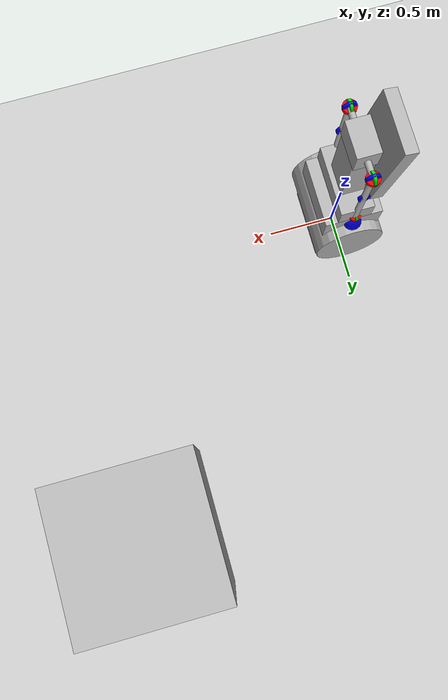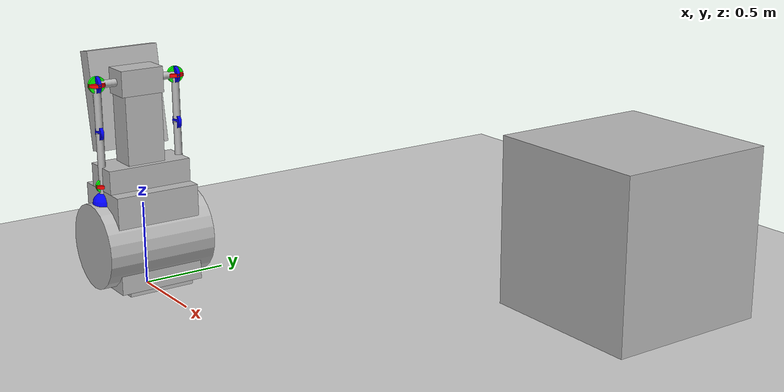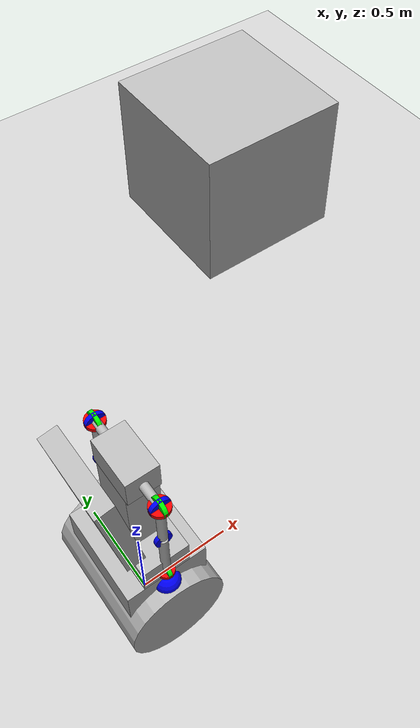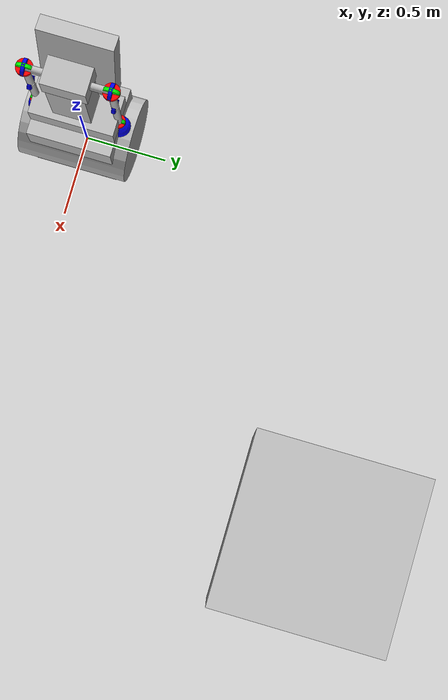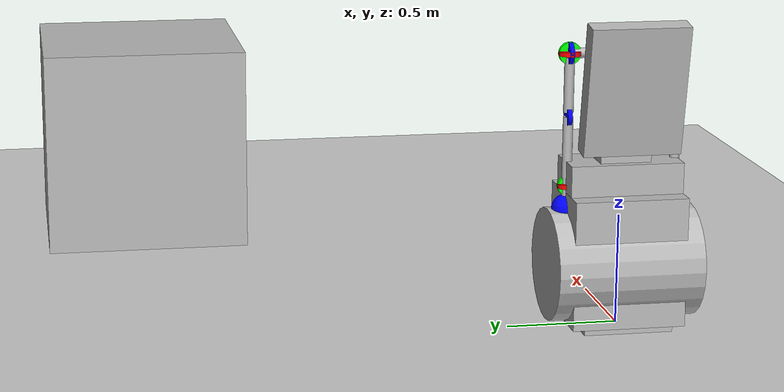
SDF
<?xml version="1.0"?>
<sdf version="1.4">
  <world name="default">
    <include>
      <uri>model://ground_plane</uri>
    </include>

     <include>
      <uri>model://sun</uri>
    </include>

    <include>
      <uri>model://mds</uri>
    </include>

    <model name="box">
      <link name="link">
        <pose>2 2 0.5 0 0 0</pose>

        <collision name="box_collision">
          <geometry>
            <box>
              <size>1 1 1</size>
            </box>
          </geometry>
        </collision>

        <visual name="visual">
          <geometry>
            <box>
              <size>1 1 1</size>
            </box>
          </geometry>
        </visual>

        <sensor name='my_contact' type='contact'>
          <contact>
            <collision>box_collision</collision>
          </contact>
        </sensor>
      </link>
    </model>

  </world>
</sdf>

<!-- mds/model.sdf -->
<sdf version='1.4'>
  <model name="my_robot">

    <pose>0 0 1.24 0 0 0</pose>
 <static>false</static>
 <static>true</static>

<allow_auto_disable>true</allow_auto_disable>

  <!-- Rectangular base -->
  <link name='base'>
    <pose>0 0 -1.2065 0 0 0</pose>
     <collision name='collision'>
      <geometry>
        <box>
         <size> 0.4 0.4 0.01</size>
        </box>
      </geometry>
     </collision>

     <visual name='visual'>
      <geometry>
        <box>
         <size> 0.4 0.4 0.05</size>
        </box>
      </geometry>
    </visual>

     <inertial> <mass>100.1</mass> </inertial>
 </link>

  <link name='wheels'>
    <pose>0 0 -1.2065 0 0 0</pose>
     <collision name='collision'>
      <pose>0 0 .254 1.57 0 0</pose>
      <geometry>
       <cylinder>
        <radius>0.254</radius>
        <length>0.6604</length>
       </cylinder>
      </geometry>
     </collision>

     <visual name='visual'>
      <pose>0 0 .254 1.57 0 0</pose>
      <geometry>
       <cylinder>
        <radius>0.254</radius>
        <length>0.6604</length>
       </cylinder>
      </geometry>
    </visual>

     <inertial> <mass>100.1</mass> </inertial>
 </link>

  <link name='box1'>
    <pose>0 0 -0.9144 0 0 0</pose>
     <collision name='collision'>
      <pose>0 0 0   0 0 0</pose>
      <geometry>
        <box>
         <size>0.4191 0.508 0.5842</size>
        </box>
      </geometry>
     </collision>
     <visual name='visual'>
      <pose>0 0 0   0 0 0</pose>
      <geometry>
        <box>
         <size>0.4191 0.508 0.5842</size>
        </box>
      </geometry>
    </visual>
     <inertial> <mass>100.1</mass> </inertial>
 </link>

  <link name='box2'>
    <pose>0 0 -0.5524 0 0 0</pose>
     <collision name='collision'>
      <pose>0 0 0   0 0 0</pose>
      <geometry>
        <box>
         <size>0.2413 0.508 0.1398</size>
        </box>
      </geometry>
     </collision>
     <visual name='visual'>
      <pose>0 0 0   0 0 0</pose>
      <geometry>
        <box>
         <size>0.2413 0.508 0.1398</size>
        </box>
      </geometry>
    </visual>
     <inertial> <mass>0.1</mass> </inertial>
 </link>

<link name='backpack'>
    <pose>-0.17145 0 -0.13335 0 -0.163526619 0</pose>
     <collision name='collision'>
      <pose>0 0 0   0 0 0</pose>
      <geometry>
        <box>
         <size>0.09525 0.43815 0.5842</size>
        </box>
      </geometry>
     </collision>
     <visual name='visual'>
      <pose>0 0 0   0 0 0</pose>
      <geometry>
        <box>
         <size>0.09525 0.43815 0.5842</size>
        </box>
      </geometry>
    </visual>
     <inertial> <mass>0.1</mass> </inertial>
 </link>

  <link name='chest'>
    <pose>0 0 -0.2794 0 0 0</pose>
     <collision name='collision'>
      <pose>0 0 0   0 0 0</pose>
      <geometry>
        <box>
         <size>0.1651 0.2286 0.4064</size>
        </box>
      </geometry>
     </collision>
     <visual name='visual'>
      <pose>0 0 0   0 0 0</pose>
      <geometry>
        <box>
         <size>0.1651 0.2286 0.4064</size>
        </box>
      </geometry>
    </visual>
     <inertial> <mass>0.1</mass> </inertial>
 </link>

  <!-- Rectangular base -->
  <link name='torso'>
    <pose>0 0 0 0 0 0</pose>
     <collision name='collision'>
      <geometry>
        <box>
         <size> 0.1651 0.26035 0.1524</size>
        </box>
      </geometry>
     </collision>
     <visual name='visual'>
      <geometry>
       <box>
         <size> 0.1651 0.26035 0.1524</size>
       </box>
      </geometry>
    </visual>
     <inertial> <mass>0.1</mass> </inertial>
 </link>

<joint type="revolute" name="WHEELS">
        <pose>0 0.0 0 0 0  0</pose>
        <child>wheels</child>
        <parent>base</parent>
        <axis>
          <xyz>0 0 0</xyz>
          <limit>
            <lower>0</lower>
            <upper>0</upper>
            <effort>0</effort>
          <velocity>0</velocity>
          </limit>

        </axis>
</joint>

<joint type="revolute" name="WHEELS-box1">
        <pose>0 0.0 0 0 0  0</pose>
        <child>box1</child>
        <parent>wheels</parent>
        <axis>
          <xyz>0 0 0</xyz>
          <limit>
            <lower>0</lower>
            <upper>0</upper>
            <effort>0</effort>
          <velocity>0</velocity>
          </limit>
        </axis>
</joint>

<joint type="revolute" name="WHEELS-box2">
        <pose>0 0.0 0 0 0  0</pose>
        <child>box2</child>
        <parent>box1</parent>
        <axis>
          <xyz>0 0 0</xyz>
          <limit>
            <lower>0</lower>
            <upper>0</upper>
            <effort>0</effort>
          <velocity>0</velocity>
          </limit>
        </axis>
</joint>

<joint type="revolute" name="TSY">
        <pose>0 0.0 -0.216 0 0  0</pose>
        <child>chest</child>
        <parent>box2</parent>
        <axis>
          <xyz>0 0 1</xyz>
        </axis>
</joint>

<joint type="revolute" name="backpackjoint">
        <pose>0 0.0 -0.216    0 0 0</pose>
        <child>backpack</child>
        <parent>chest</parent>
        <axis>
          <xyz>0 0 0</xyz>
           <limit>
            <lower>0</lower>
            <upper>0</upper>
            <effort>0</effort>
            <velocity>0</velocity>
          </limit>
       </axis>
</joint>

<joint type="revolute" name="TSY2">
        <pose>0 0.0 -0.216    0 0 0</pose>
        <child>torso</child>
        <parent>chest</parent>
        <axis>
          <xyz>0 0 0</xyz>
           <limit>
            <lower>0</lower>
            <upper>0</upper>
            <effort>0</effort>
            <velocity>0</velocity>
          </limit>
       </axis>
</joint>

<link name="RSP_body">
 <pose>0.0 -0.245510  0.0 1.57 0.0 0.0</pose>

 <collision name="collision">
   <geometry>
     <sphere>
      <radius>0.04953</radius>
     </sphere>
   </geometry>
 </collision>
 <visual name="visual">
   <geometry>
     <cylinder>
      <radius>0.04953</radius>
      <length>.02</length>
     </cylinder>
   </geometry>
  <material>
    <ambient>0 0 1 1</ambient>
    <diffuse>0 0 1 1</diffuse>
    <specular>0.1 0.1 0.1 1</specular>
    <emissive>0 0 0 0</emissive>
  </material>
 </visual>
     <inertial> <mass>0.1</mass> </inertial>

</link>

<link name="RSP_body_fake">
 <pose>0.0 -0.122755 0.0    1.57 0.0 0.0</pose>

 <collision name="collision">
   <geometry>
     <cylinder>
      <radius>0.051</radius>
      <length>0.245510</length>
     </cylinder>
   </geometry>
 </collision>
 <visual name="visual">
   <geometry>
     <cylinder>
      <radius>0.02222</radius>
      <length>0.245510</length>
     </cylinder>
   </geometry>
 </visual>
<sensor name='dan_my_contact' type='contact'> <contact> <collision>box_collision</collision> </contact> </sensor>

</link>
<joint type="revolute" name="RSP">
        <pose>0 0.0 0 0 0  0</pose>
        <child>RSP_body</child>
        <parent>torso</parent>
        <axis>
          <xyz>0 1 0</xyz>
        </axis>
</joint>
<joint type="revolute" name="RSP_fake">
        <pose>0 0.0 0 0 0  0</pose>
        <child>RSP_body_fake</child>
        <parent>torso</parent>
        <axis>
          <xyz>0 1 0</xyz>
        </axis>
</joint>

<link name="RSR_body">
 <pose>0.0 -0.2455100  0.0 0 1.57 0.0</pose>
 <visual name="visual">
   <geometry>
     <cylinder>
      <radius>0.04953</radius>
      <length>.02</length>
     </cylinder>
   </geometry>
  <material>
    <ambient>0 1 0 1</ambient>
    <diffuse>0 1 0 1</diffuse>
    <specular>0.1 0.1 0.1 1</specular>
    <emissive>0 0 0 0</emissive>
  </material>
 </visual>
     <inertial> <mass>0.1</mass> </inertial>

</link>

<joint type="revolute" name="RSR">
 <pose>0.0 0.0 0.0 0 0.0 0.0</pose>
        <child>RSR_body</child>
        <parent>RSP_body</parent>
        <axis>
          <xyz>1 0 0</xyz>
        </axis>
</joint>

<link name="RSY_body">
 <pose>0.0 -0.2455100  0.0 0 0.0 1.57</pose>
 <visual name="visual">
   <geometry>
     <cylinder>
      <radius>0.04953</radius>
      <length>.02</length>
     </cylinder>
   </geometry>
  <material>
    <ambient>1 0 0 1</ambient>
    <diffuse>1 0 0 1</diffuse>
    <specular>0.1 0.1 0.1 1</specular>
    <emissive>0 0 0 0</emissive>
  </material>
 </visual>
     <inertial> <mass>0.1</mass> </inertial>

</link>

<link name="RSY_body_fake">
 <pose>0.0 -0.2455100  -0.1412875   0 0.0 1.57</pose>

 <collision name="collision">
   <geometry>
     <cylinder>
      <radius>0.051</radius>
      <length>0.245510</length>
     </cylinder>
   </geometry>
 </collision>

 <visual name="visual">
   <geometry>
     <cylinder>
      <radius>0.02222</radius>
      <length>0.245510</length>
     </cylinder>

   </geometry>
 </visual>
     <inertial> <mass>0.1</mass> </inertial>

</link>

<joint type="revolute" name="RSY_fake">
 <pose>0.0 0.0 0.0 0 0.0 0.0</pose>
        <child>RSY_body_fake</child>
        <parent>RSR_body</parent>
        <axis>
          <xyz>0 0 1</xyz>
        </axis>
</joint>

<joint type="revolute" name="RSY">
 <pose>0.0 0.0 0.0 0 0.0 0.0</pose>
        <child>RSY_body</child>
        <parent>RSR_body</parent>
        <axis>
          <xyz>0 0 1</xyz>
        </axis>
</joint>

<link name="REP_body">
 <pose>0.0 -0.2455100  -0.2825750 1.57 0.0 0.0</pose>
 <visual name="visual">
   <geometry>
     <cylinder>
      <radius>0.041275</radius>
      <length>.02</length>
     </cylinder>
   </geometry>
  <material>
    <ambient>0 0 1 1</ambient>
    <diffuse>0 0 1 1</diffuse>
    <specular>0.1 0.1 0.1 1</specular>
    <emissive>0 0 0 0</emissive>
  </material>
 </visual>
     <inertial> <mass>0.1</mass> </inertial>

</link>
<joint type="revolute" name="REP">
 <pose>0.0 0.0 0.0 0 0.0 0.0</pose>
        <child>REP_body</child>
        <parent>RSY_body</parent>
        <axis>
          <xyz>0 1 0</xyz>
        </axis>
</joint>

<link name="REP_body_fake">
 <pose>0.0 -0.2455100  -0.43894375 0.0 0.0 0.0</pose>
 <collision name="collision">
   <geometry>
     <cylinder>
      <radius>0.051</radius>
      <length>0.3127375</length>
     </cylinder>
   </geometry>
 </collision>
 <visual name="visual">
   <geometry>
     <cylinder>
      <radius>0.02222</radius>
      <length>0.3127375</length>
     </cylinder>
   </geometry>
 </visual>
     <inertial> <mass>0.1</mass> </inertial>

</link>
<joint type="revolute" name="REP_fake">
 <pose>0.0 0.0 0.0 0 0.0 0.0</pose>
        <child>REP_body_fake</child>
        <parent>REP_body</parent>
        <axis>
          <xyz>0 0 1</xyz>
        </axis>
</joint>

<link name="RWY_body">
 <pose>0.0 -0.2455100  -0.5953125 0 0.0 1.57</pose>
 <visual name="visual">
   <geometry>
     <cylinder>
      <radius>0.041275</radius>
      <length>.02</length>
     </cylinder>
   </geometry>
  <material>
    <ambient>1 0 0 1</ambient>
    <diffuse>1 0 0 1</diffuse>
    <specular>0.1 0.1 0.1 1</specular>
    <emissive>0 0 0 0</emissive>
  </material>
 </visual>
     <inertial> <mass>0.1</mass> </inertial>

</link>
<joint type="revolute" name="RWY">
 <pose>0.0 0.0 0.0 0 0.0 0.0</pose>
        <child>RWY_body</child>
        <parent>REP_body</parent>
        <axis>
          <xyz>0 0 1</xyz>
        </axis>
</joint>

<link name="RWR_body">
 <pose>0.0 -0.2455100  -0.5953125 0.0 1.57 0.0</pose>
 <visual name="visual">
   <geometry>
     <cylinder>
      <radius>0.041275</radius>
      <length>.02</length>
     </cylinder>
   </geometry>
  <material>
    <ambient>0 1 0 1</ambient>
    <diffuse>0 1 0 1</diffuse>
    <specular>0.1 0.1 0.1 1</specular>
    <emissive>0 0 0 0</emissive>
  </material>
 </visual>
     <inertial> <mass>0.1</mass> </inertial>

</link>
<joint type="revolute" name="RWR">
 <pose>0.0 0.0 0.0 0 0.0 0.0</pose>
        <child>RWR_body</child>
        <parent>RWY_body</parent>
        <axis>
          <xyz>1 0 0</xyz>
        </axis>
</joint>

<link name="RWR_body_fake">
 <pose>0.0 -0.2455100  -0.64765625     0.0 0.0 1.57</pose>

 <collision name="collision">
   <geometry>
     <cylinder>
      <radius>0.051</radius>
      <length>0.1046875</length>
     </cylinder>
   </geometry>
 </collision>

 <visual name="visual">
   <geometry>
     <cylinder>
      <radius>0.02222</radius>
      <length>0.1046875</length>
     </cylinder>
   </geometry>
 </visual>
     <inertial> <mass>0.1</mass> </inertial>

</link>
<joint type="revolute" name="RWR_fake">
 <pose>0.0 0.0 0.0 0 0.0 0.0</pose>
        <child>RWR_body_fake</child>
        <parent>RWR_body</parent>
        <axis>
          <xyz>0 0 1</xyz>
        </axis>
</joint>

<link name="RHAND_body">
 <pose>0.0 -0.2455100  -0.70 0 0.0 0.0</pose>
 <collision name="collision">
   <geometry>
       <sphere>
          <radius> 0.065 </radius>
       </sphere>
   </geometry>
 </collision>
 <visual name="visual">
   <geometry>
       <sphere>
          <radius> 0.065 </radius>
       </sphere>
   </geometry>
  <material>
    <ambient>0 0 1 1</ambient>
    <diffuse>0 0 1 1</diffuse>
    <specular>0.1 0.1 0.1 1</specular>
    <emissive>0 0 0 0</emissive>
  </material>
 </visual>
     <inertial> <mass>0.1</mass> </inertial>

<sensor name='dan_my_contact_RHand' type='contact'> <contact> <collision>box_collision</collision> </contact> </sensor>
</link>
<joint type="revolute" name="RHAND">
 <pose>0.0 0.0 0.0 0 0.0 0.0</pose>
        <child>RHAND_body</child>
        <parent>RWR_body</parent>
        <axis>
          <xyz>0 0 1</xyz>
        </axis>
</joint>

<link name="LSP_body">
 <pose>0.0 0.245510  0.0 1.57 0.0 0.0</pose>

 <visual name="visual">
   <geometry>
     <cylinder>
      <radius>0.04953</radius>
      <length>.02</length>
     </cylinder>
   </geometry>
  <material>
    <ambient>0 0 1 1</ambient>
    <diffuse>0 0 1 1</diffuse>
    <specular>0.1 0.1 0.1 1</specular>
    <emissive>0 0 0 0</emissive>
  </material>
 </visual>
     <inertial> <mass>0.1</mass> </inertial>

</link>

<link name="LSP_body_fake">
 <pose>0.0 0.122755 0.0    1.57 0.0 0.0</pose>

 <collision name="collision">
   <geometry>
     <cylinder>
      <radius>0.051</radius>
      <length>0.245510</length>
     </cylinder>
   </geometry>
 </collision>
 <visual name="visual">
   <geometry>
     <cylinder>
      <radius>0.02222</radius>
      <length>0.245510</length>
     </cylinder>
   </geometry>
 </visual>
     <inertial> <mass>0.1</mass> </inertial>

</link>
<joint type="revolute" name="LSP">
        <pose>0 0.0 0 0 0  0</pose>
        <child>LSP_body</child>
        <parent>torso</parent>
        <axis>
          <xyz>0 1 0</xyz>
        </axis>
</joint>
<joint type="revolute" name="LSP_fake">
        <pose>0 0.0 0 0 0  0</pose>
        <child>LSP_body_fake</child>
        <parent>torso</parent>
        <axis>
          <xyz>0 1 0</xyz>
        </axis>
</joint>

<link name="LSR_body">
 <pose>0.0 0.2455100  0.0 0 1.57 0.0</pose>
 <visual name="visual">
   <geometry>
     <cylinder>
      <radius>0.04953</radius>
      <length>.02</length>
     </cylinder>
   </geometry>
  <material>
    <ambient>0 1 0 1</ambient>
    <diffuse>0 1 0 1</diffuse>
    <specular>0.1 0.1 0.1 1</specular>
    <emissive>0 0 0 0</emissive>
  </material>
 </visual>
     <inertial> <mass>0.1</mass> </inertial>

</link>

<joint type="revolute" name="LSR">
 <pose>0.0 0.0 0.0 0 0.0 0.0</pose>
        <child>LSR_body</child>
        <parent>LSP_body</parent>
        <axis>
          <xyz>1 0 0</xyz>
        </axis>
</joint>

<link name="LSY_body">
 <pose>0.0 0.2455100  0.0 0 0.0 1.57</pose>
 <visual name="visual">
   <geometry>
     <cylinder>
      <radius>0.04953</radius>
      <length>.02</length>
     </cylinder>
   </geometry>
  <material>
    <ambient>1 0 0 1</ambient>
    <diffuse>1 0 0 1</diffuse>
    <specular>0.1 0.1 0.1 1</specular>
    <emissive>0 0 0 0</emissive>
  </material>
 </visual>
     <inertial> <mass>0.1</mass> </inertial>

</link>

<link name="LSY_body_fake">
 <pose>0.0 0.2455100  -0.1412875   0 0.0 1.57</pose>

 <collision name="collision">
   <geometry>
     <cylinder>
      <radius>0.051</radius>
      <length>0.245510</length>
     </cylinder>
   </geometry>
 </collision>

 <visual name="visual">
   <geometry>
     <cylinder>
      <radius>0.02222</radius>
      <length>0.245510</length>
     </cylinder>

   </geometry>
 </visual>
     <inertial> <mass>0.1</mass> </inertial>

</link>

<joint type="revolute" name="LSY_fake">
 <pose>0.0 0.0 0.0 0 0.0 0.0</pose>
        <child>LSY_body_fake</child>
        <parent>LSR_body</parent>
        <axis>
          <xyz>0 0 1</xyz>
        </axis>
</joint>

<joint type="revolute" name="LSY">
 <pose>0.0 0.0 0.0 0 0.0 0.0</pose>
        <child>LSY_body</child>
        <parent>LSR_body</parent>
        <axis>
          <xyz>0 0 1</xyz>
        </axis>
</joint>

<link name="LEP_body">
 <pose>0.0 0.2455100  -0.2825750 1.57 0.0 0.0</pose>
 <collision name="collision">
   <geometry>
     <sphere>
      <radius>0.041275</radius>
     </sphere>
   </geometry>
 </collision>
 <visual name="visual">
   <geometry>
     <cylinder>
      <radius>0.041275</radius>
      <length>.02</length>
     </cylinder>
   </geometry>
  <material>
    <ambient>0 0 1 1</ambient>
    <diffuse>0 0 1 1</diffuse>
    <specular>0.1 0.1 0.1 1</specular>
    <emissive>0 0 0 0</emissive>
  </material>
 </visual>
     <inertial> <mass>0.1</mass> </inertial>

</link>
<joint type="revolute" name="LEP">
 <pose>0.0 0.0 0.0 0 0.0 0.0</pose>
        <child>LEP_body</child>
        <parent>LSY_body</parent>
        <axis>
          <xyz>0 1 0</xyz>
        </axis>
</joint>

<link name="LEP_body_fake">
 <pose>0.0 0.2455100  -0.43894375 0.0 0.0 0.0</pose>
 <collision name="collision">
   <geometry>
     <cylinder>
      <radius>0.051</radius>
      <length>0.3127375</length>
     </cylinder>
   </geometry>
 </collision>

 <visual name="visual">
   <geometry>
     <cylinder>
      <radius>0.02222</radius>
      <length>0.3127375</length>
     </cylinder>
   </geometry>
 </visual>
     <inertial> <mass>0.1</mass> </inertial>

</link>
<joint type="revolute" name="LEP_fake">
 <pose>0.0 0.0 0.0 0 0.0 0.0</pose>
        <child>LEP_body_fake</child>
        <parent>LEP_body</parent>
        <axis>
          <xyz>0 0 1</xyz>
        </axis>
</joint>

<link name="LWY_body">
 <pose>0.0 0.2455100  -0.5953125 0 0.0 1.57</pose>
 <collision name="collision">
   <geometry>
     <sphere>
      <radius>0.041275</radius>
     </sphere>
   </geometry>
 </collision>
 <visual name="visual">
   <geometry>
     <cylinder>
      <radius>0.041275</radius>
      <length>.02</length>
     </cylinder>
   </geometry>
  <material>
    <ambient>1 0 0 1</ambient>
    <diffuse>1 0 0 1</diffuse>
    <specular>0.1 0.1 0.1 1</specular>
    <emissive>0 0 0 0</emissive>
  </material>
 </visual>
     <inertial> <mass>0.1</mass> </inertial>

</link>
<joint type="revolute" name="LWY">
 <pose>0.0 0.0 0.0 0 0.0 0.0</pose>
        <child>LWY_body</child>
        <parent>LEP_body</parent>
        <axis>
          <xyz>0 0 1</xyz>
        </axis>
</joint>

<link name="LWR_body">
 <pose>0.0 0.2455100  -0.5953125 0.0 1.57 0.0</pose>
 <visual name="visual">
   <geometry>
     <cylinder>
      <radius>0.041275</radius>
      <length>.02</length>
     </cylinder>
   </geometry>
  <material>
    <ambient>0 1 0 1</ambient>
    <diffuse>0 1 0 1</diffuse>
    <specular>0.1 0.1 0.1 1</specular>
    <emissive>0 0 0 0</emissive>
  </material>
 </visual>
     <inertial> <mass>0.1</mass> </inertial>

</link>
<joint type="revolute" name="LWR">
 <pose>0.0 0.0 0.0 0 0.0 0.0</pose>
        <child>LWR_body</child>
        <parent>LWY_body</parent>
        <axis>
          <xyz>1 0 0</xyz>
        </axis>
</joint>

<link name="LWR_body_fake">
 <pose>0.0 0.2455100  -0.64765625     0.0 0.0 1.57</pose>
 <collision name="collision">
   <geometry>
     <cylinder>
      <radius>0.051</radius>
      <length>0.1046875</length>
     </cylinder>
   </geometry>
 </collision>

 <visual name="visual">
   <geometry>
     <cylinder>
      <radius>0.02222</radius>
      <length>0.1046875</length>
     </cylinder>
   </geometry>
 </visual>
     <inertial> <mass>0.1</mass> </inertial>
</link>

<joint type="revolute" name="LWR_fake">
 <pose>0.0 0.0 0.0 0 0.0 0.0</pose>
        <child>LWR_body_fake</child>
        <parent>LWR_body</parent>
        <axis>
          <xyz>0 0 1</xyz>
        </axis>
</joint>

<link name="LHAND_body">
 <pose>0.0 0.2455100  -0.70 0 0.0 0.0</pose>
 <collision name="box_collision">
   <geometry>
       <box> <size>0.065 0.065 0.065 </size></box>
   </geometry>
 </collision>
 <visual name="visual">
   <geometry>
       <sphere>
          <radius> 0.065 </radius>
       </sphere>
   </geometry>
  <material>
    <ambient>0 0 1 1</ambient>
    <diffuse>0 0 1 1</diffuse>
    <specular>0.1 0.1 0.1 1</specular>
    <emissive>0 0 0 0</emissive>
  </material>
 </visual>
     <inertial> <mass>0.1</mass> </inertial>

        <sensor name='my_contact' type='contact'>
          <contact>
            <collision>box_collision</collision>
          </contact>
        </sensor>
</link>
<joint type="revolute" name="LHAND">
 <pose>0.0 0.0 0.0 0 0.0 0.0</pose>
        <child>LHAND_body</child>
        <parent>LWR_body</parent>
        <axis>
          <xyz>0 0 1</xyz>
        </axis>
</joint>

    <plugin filename="/home/lofaro/.gazebo/models/mds/build/libmds_plugin.so" name="mds_plugin" >
       <LSP>LSP</LSP>
       <LSR>LSR</LSR>
       <LSY>LSY</LSY>
       <LEP>LEP</LEP>
       <LWR>LWR</LWR>
       <LWY>LWY</LWY>

       <RSP>RSP</RSP>
       <RSR>RSR</RSR>
       <RSY>RSY</RSY>
       <REP>REP</REP>
       <RWR>RWR</RWR>
       <RWY>RWY</RWY>

       <TSY>TSY</TSY>

    </plugin>
  </model>
</sdf>
